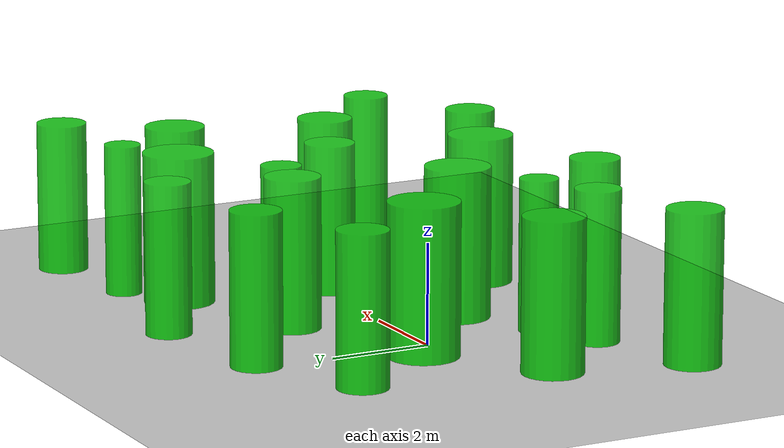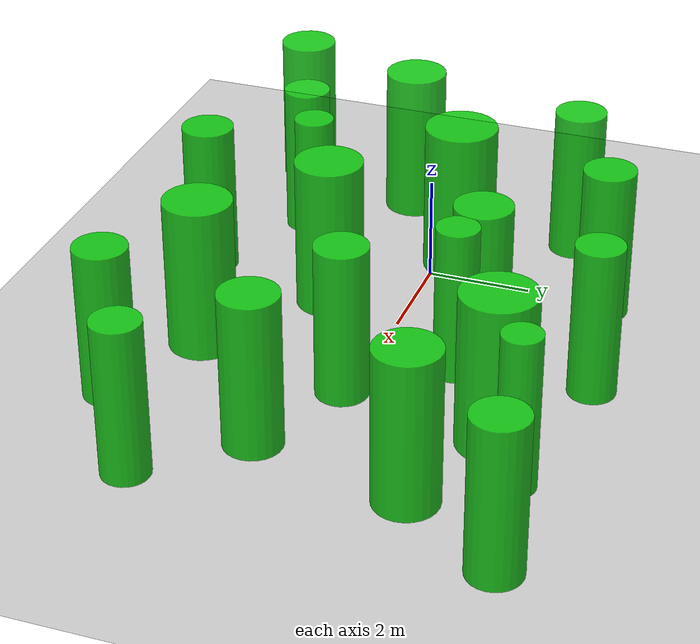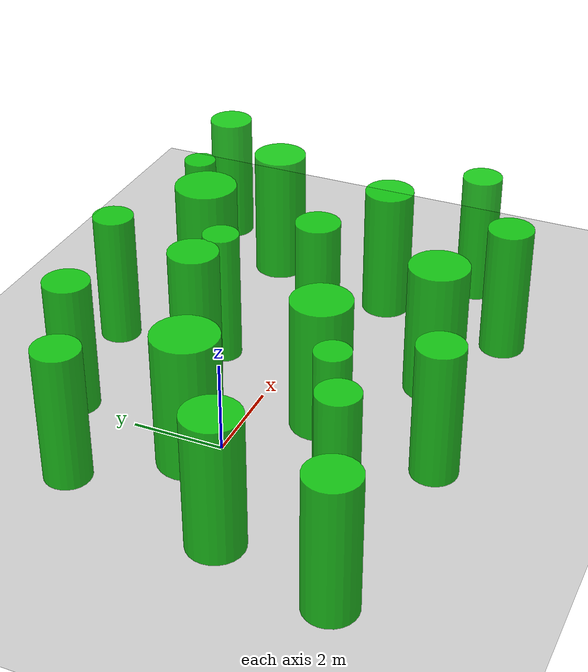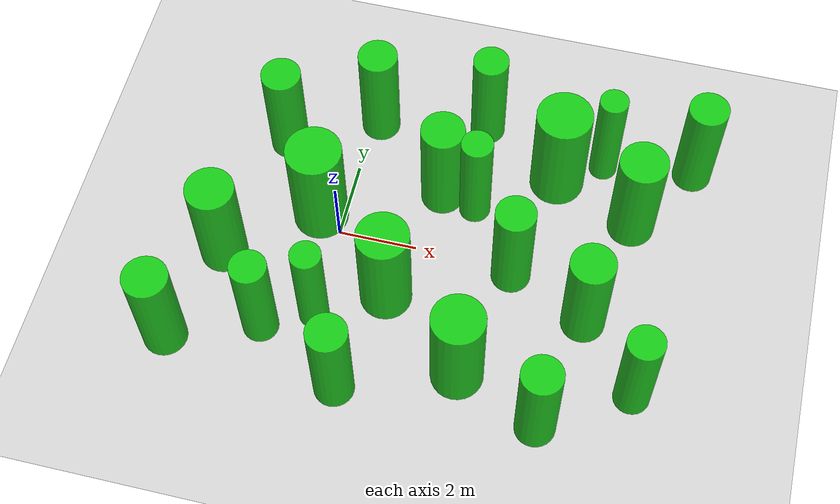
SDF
<?xml version="1.0"?>
<sdf version="1.6">
  <world name="more_obstacles_complex">
    <include><uri>model://sun</uri></include>
    <include><uri>model://ground_plane</uri></include>
    <physics name="default_physics" default="0" type="ode">
      <gravity>0 0 -9.8066</gravity>
      <ode>
        <solver><type>quick</type><iters>10</iters><sor>1.3</sor></solver>
        <constraints>
          <cfm>0</cfm>
          <erp>0.2</erp>
          <contact_max_correcting_vel>100</contact_max_correcting_vel>
          <contact_surface_layer>0.001</contact_surface_layer>
        </constraints>
      </ode>
      <max_step_size>0.004</max_step_size>
      <real_time_factor>1</real_time_factor>
      <real_time_update_rate>250</real_time_update_rate>
    </physics>
    <model name="complex_obstacle_0">
      <static>true</static>
      <pose>-3.400 -3.800 1.500 0 0 0</pose>
      <link name="link">
        <collision name="collision">
          <geometry><cylinder><radius>0.550</radius><length>3.000</length></cylinder></geometry>
        </collision>
        <visual name="visual">
          <geometry><cylinder><radius>0.550</radius><length>3.000</length></cylinder></geometry>
          <material><ambient>0 0.8 0 0.85</ambient><diffuse>0 0.8 0 0.85</diffuse></material>
        </visual>
      </link>
    </model>
    <model name="complex_obstacle_1">
      <static>true</static>
      <pose>-2.700 -1.200 1.500 0 0 0</pose>
      <link name="link">
        <collision name="collision">
          <geometry><cylinder><radius>0.600</radius><length>3.000</length></cylinder></geometry>
        </collision>
        <visual name="visual">
          <geometry><cylinder><radius>0.600</radius><length>3.000</length></cylinder></geometry>
          <material><ambient>0 0.8 0 0.85</ambient><diffuse>0 0.8 0 0.85</diffuse></material>
        </visual>
      </link>
    </model>
    <model name="complex_obstacle_2">
      <static>true</static>
      <pose>-2.000 2.400 1.500 0 0 0</pose>
      <link name="link">
        <collision name="collision">
          <geometry><cylinder><radius>0.500</radius><length>3.000</length></cylinder></geometry>
        </collision>
        <visual name="visual">
          <geometry><cylinder><radius>0.500</radius><length>3.000</length></cylinder></geometry>
          <material><ambient>0 0.8 0 0.85</ambient><diffuse>0 0.8 0 0.85</diffuse></material>
        </visual>
      </link>
    </model>
    <model name="complex_obstacle_3">
      <static>true</static>
      <pose>-1.200 -3.000 1.500 0 0 0</pose>
      <link name="link">
        <collision name="collision">
          <geometry><cylinder><radius>0.450</radius><length>3.000</length></cylinder></geometry>
        </collision>
        <visual name="visual">
          <geometry><cylinder><radius>0.450</radius><length>3.000</length></cylinder></geometry>
          <material><ambient>0 0.8 0 0.85</ambient><diffuse>0 0.8 0 0.85</diffuse></material>
        </visual>
      </link>
    </model>
    <model name="complex_obstacle_4">
      <static>true</static>
      <pose>-0.600 0.400 1.500 0 0 0</pose>
      <link name="link">
        <collision name="collision">
          <geometry><cylinder><radius>0.700</radius><length>3.000</length></cylinder></geometry>
        </collision>
        <visual name="visual">
          <geometry><cylinder><radius>0.700</radius><length>3.000</length></cylinder></geometry>
          <material><ambient>0 0.8 0 0.85</ambient><diffuse>0 0.8 0 0.85</diffuse></material>
        </visual>
      </link>
    </model>
    <model name="complex_obstacle_5">
      <static>true</static>
      <pose>0.200 3.500 1.500 0 0 0</pose>
      <link name="link">
        <collision name="collision">
          <geometry><cylinder><radius>0.500</radius><length>3.000</length></cylinder></geometry>
        </collision>
        <visual name="visual">
          <geometry><cylinder><radius>0.500</radius><length>3.000</length></cylinder></geometry>
          <material><ambient>0 0.8 0 0.85</ambient><diffuse>0 0.8 0 0.85</diffuse></material>
        </visual>
      </link>
    </model>
    <model name="complex_obstacle_6">
      <static>true</static>
      <pose>1.000 -4.200 1.500 0 0 0</pose>
      <link name="link">
        <collision name="collision">
          <geometry><cylinder><radius>0.500</radius><length>3.000</length></cylinder></geometry>
        </collision>
        <visual name="visual">
          <geometry><cylinder><radius>0.500</radius><length>3.000</length></cylinder></geometry>
          <material><ambient>0 0.8 0 0.85</ambient><diffuse>0 0.8 0 0.85</diffuse></material>
        </visual>
      </link>
    </model>
    <model name="complex_obstacle_7">
      <static>true</static>
      <pose>1.600 -1.500 1.500 0 0 0</pose>
      <link name="link">
        <collision name="collision">
          <geometry><cylinder><radius>0.650</radius><length>3.000</length></cylinder></geometry>
        </collision>
        <visual name="visual">
          <geometry><cylinder><radius>0.650</radius><length>3.000</length></cylinder></geometry>
          <material><ambient>0 0.8 0 0.85</ambient><diffuse>0 0.8 0 0.85</diffuse></material>
        </visual>
      </link>
    </model>
    <model name="complex_obstacle_8">
      <static>true</static>
      <pose>2.300 1.700 1.500 0 0 0</pose>
      <link name="link">
        <collision name="collision">
          <geometry><cylinder><radius>0.550</radius><length>3.000</length></cylinder></geometry>
        </collision>
        <visual name="visual">
          <geometry><cylinder><radius>0.550</radius><length>3.000</length></cylinder></geometry>
          <material><ambient>0 0.8 0 0.85</ambient><diffuse>0 0.8 0 0.85</diffuse></material>
        </visual>
      </link>
    </model>
    <model name="complex_obstacle_9">
      <static>true</static>
      <pose>3.000 4.000 1.500 0 0 0</pose>
      <link name="link">
        <collision name="collision">
          <geometry><cylinder><radius>0.450</radius><length>3.000</length></cylinder></geometry>
        </collision>
        <visual name="visual">
          <geometry><cylinder><radius>0.450</radius><length>3.000</length></cylinder></geometry>
          <material><ambient>0 0.8 0 0.85</ambient><diffuse>0 0.8 0 0.85</diffuse></material>
        </visual>
      </link>
    </model>
    <model name="complex_obstacle_10">
      <static>true</static>
      <pose>3.800 -3.200 1.500 0 0 0</pose>
      <link name="link">
        <collision name="collision">
          <geometry><cylinder><radius>0.650</radius><length>3.000</length></cylinder></geometry>
        </collision>
        <visual name="visual">
          <geometry><cylinder><radius>0.650</radius><length>3.000</length></cylinder></geometry>
          <material><ambient>0 0.8 0 0.85</ambient><diffuse>0 0.8 0 0.85</diffuse></material>
        </visual>
      </link>
    </model>
    <model name="complex_obstacle_11">
      <static>true</static>
      <pose>4.500 -0.200 1.500 0 0 0</pose>
      <link name="link">
        <collision name="collision">
          <geometry><cylinder><radius>0.500</radius><length>3.000</length></cylinder></geometry>
        </collision>
        <visual name="visual">
          <geometry><cylinder><radius>0.500</radius><length>3.000</length></cylinder></geometry>
          <material><ambient>0 0.8 0 0.85</ambient><diffuse>0 0.8 0 0.85</diffuse></material>
        </visual>
      </link>
    </model>
    <model name="complex_obstacle_12">
      <static>true</static>
      <pose>5.100 2.800 1.500 0 0 0</pose>
      <link name="link">
        <collision name="collision">
          <geometry><cylinder><radius>0.700</radius><length>3.000</length></cylinder></geometry>
        </collision>
        <visual name="visual">
          <geometry><cylinder><radius>0.700</radius><length>3.000</length></cylinder></geometry>
          <material><ambient>0 0.8 0 0.85</ambient><diffuse>0 0.8 0 0.85</diffuse></material>
        </visual>
      </link>
    </model>
    <model name="complex_obstacle_13">
      <static>true</static>
      <pose>5.900 -4.100 1.500 0 0 0</pose>
      <link name="link">
        <collision name="collision">
          <geometry><cylinder><radius>0.500</radius><length>3.000</length></cylinder></geometry>
        </collision>
        <visual name="visual">
          <geometry><cylinder><radius>0.500</radius><length>3.000</length></cylinder></geometry>
          <material><ambient>0 0.8 0 0.85</ambient><diffuse>0 0.8 0 0.85</diffuse></material>
        </visual>
      </link>
    </model>
    <model name="complex_obstacle_14">
      <static>true</static>
      <pose>6.500 -1.100 1.500 0 0 0</pose>
      <link name="link">
        <collision name="collision">
          <geometry><cylinder><radius>0.550</radius><length>3.000</length></cylinder></geometry>
        </collision>
        <visual name="visual">
          <geometry><cylinder><radius>0.550</radius><length>3.000</length></cylinder></geometry>
          <material><ambient>0 0.8 0 0.85</ambient><diffuse>0 0.8 0 0.85</diffuse></material>
        </visual>
      </link>
    </model>
    <model name="complex_obstacle_15">
      <static>true</static>
      <pose>7.200 1.900 1.500 0 0 0</pose>
      <link name="link">
        <collision name="collision">
          <geometry><cylinder><radius>0.600</radius><length>3.000</length></cylinder></geometry>
        </collision>
        <visual name="visual">
          <geometry><cylinder><radius>0.600</radius><length>3.000</length></cylinder></geometry>
          <material><ambient>0 0.8 0 0.85</ambient><diffuse>0 0.8 0 0.85</diffuse></material>
        </visual>
      </link>
    </model>
    <model name="complex_obstacle_16">
      <static>true</static>
      <pose>8.000 -2.800 1.500 0 0 0</pose>
      <link name="link">
        <collision name="collision">
          <geometry><cylinder><radius>0.450</radius><length>3.000</length></cylinder></geometry>
        </collision>
        <visual name="visual">
          <geometry><cylinder><radius>0.450</radius><length>3.000</length></cylinder></geometry>
          <material><ambient>0 0.8 0 0.85</ambient><diffuse>0 0.8 0 0.85</diffuse></material>
        </visual>
      </link>
    </model>
    <model name="complex_obstacle_17">
      <static>true</static>
      <pose>8.500 3.800 1.500 0 0 0</pose>
      <link name="link">
        <collision name="collision">
          <geometry><cylinder><radius>0.500</radius><length>3.000</length></cylinder></geometry>
        </collision>
        <visual name="visual">
          <geometry><cylinder><radius>0.500</radius><length>3.000</length></cylinder></geometry>
          <material><ambient>0 0.8 0 0.85</ambient><diffuse>0 0.8 0 0.85</diffuse></material>
        </visual>
      </link>
    </model>
    <model name="complex_moving_obstacle_0">
      <static>false</static>
      <pose>0.000 -2.400 1.500 0 0 0</pose>
      <link name="link">
        <gravity>false</gravity>
        <inertial>
          <mass>1.0</mass>
          <inertia>
            <ixx>0.1</ixx><ixy>0.0</ixy><ixz>0.0</ixz>
            <iyy>0.1</iyy><iyz>0.0</iyz>
            <izz>0.1</izz>
          </inertia>
        </inertial>
        <collision name="collision">
          <geometry><cylinder><radius>0.380</radius><length>3.000</length></cylinder></geometry>
        </collision>
        <visual name="visual">
          <geometry><cylinder><radius>0.380</radius><length>3.000</length></cylinder></geometry>
          <material><ambient>0 0.8 0 0.85</ambient><diffuse>0 0.8 0 0.85</diffuse></material>
        </visual>
      </link>
    </model>
    <model name="complex_moving_obstacle_1">
      <static>false</static>
      <pose>3.200 1.500 1.500 0 0 0</pose>
      <link name="link">
        <gravity>false</gravity>
        <inertial>
          <mass>1.0</mass>
          <inertia>
            <ixx>0.1</ixx><ixy>0.0</ixy><ixz>0.0</ixz>
            <iyy>0.1</iyy><iyz>0.0</iyz>
            <izz>0.1</izz>
          </inertia>
        </inertial>
        <collision name="collision">
          <geometry><cylinder><radius>0.400</radius><length>3.000</length></cylinder></geometry>
        </collision>
        <visual name="visual">
          <geometry><cylinder><radius>0.400</radius><length>3.000</length></cylinder></geometry>
          <material><ambient>0 0.8 0 0.85</ambient><diffuse>0 0.8 0 0.85</diffuse></material>
        </visual>
      </link>
    </model>
    <model name="complex_moving_obstacle_2">
      <static>false</static>
      <pose>6.200 3.498 1.500 0 0 0</pose>
      <link name="link">
        <gravity>false</gravity>
        <inertial>
          <mass>1.0</mass>
          <inertia>
            <ixx>0.1</ixx><ixy>0.0</ixy><ixz>0.0</ixz>
            <iyy>0.1</iyy><iyz>0.0</iyz>
            <izz>0.1</izz>
          </inertia>
        </inertial>
        <collision name="collision">
          <geometry><cylinder><radius>0.360</radius><length>3.000</length></cylinder></geometry>
        </collision>
        <visual name="visual">
          <geometry><cylinder><radius>0.360</radius><length>3.000</length></cylinder></geometry>
          <material><ambient>0 0.8 0 0.85</ambient><diffuse>0 0.8 0 0.85</diffuse></material>
        </visual>
      </link>
    </model>
  </world>
</sdf>
